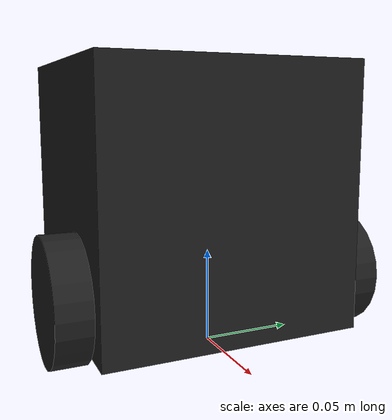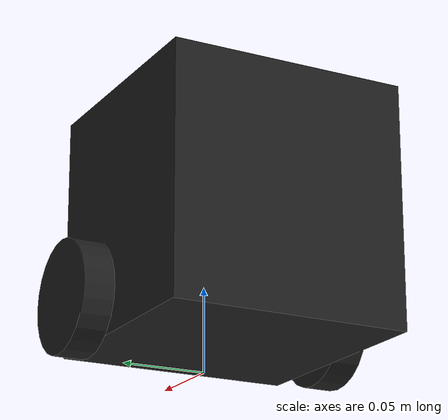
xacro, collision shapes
<?xml version="1.0"?>
<!-- Revolute-Revolute-Revolute Manipulator -->
<robot name="bot" xmlns:xacro="http://ros.org/wiki/xacro">
  <xacro:include filename="$(find turtlebot3_description)/urdf/common_properties.xacro"/>

  <!--xacro:include filename="$(find turtlebot3_description)/urdf/turtlebot3_burger.gazebo.xacro"/-->
  <xacro:include filename="$(find ros_control)/bot.gazebo"/>

  <link name="base_footprint"/>

  <joint name="base_joint" type="fixed">
    <parent link="base_footprint"/>
    <child link="base_link"/>
    <origin xyz="0.0 0.0 0.010" rpy="0 0 0"/>
  </joint>

  <link name="base_link">
    <visual>
      <origin xyz="-0.032 0 0.0" rpy="0 0 0"/>
      <geometry>
        <mesh filename="package://turtlebot3_description/meshes/bases/burger_base.stl" scale="0.001 0.001 0.001"/>
      </geometry>
      <material name="light_black"/>
    </visual>

    <collision>
      <origin xyz="-0.032 0 0.070" rpy="0 0 0"/>
      <geometry>
        <box size="0.140 0.140 0.143"/>
      </geometry>
    </collision>

    <inertial>
      <origin xyz="0 0 0" rpy="0 0 0"/>
      <mass value="8.2573504e-01"/>
      <inertia ixx="2.2124416e-03" ixy="-1.2294101e-05" ixz="3.4938785e-05"
               iyy="2.1193702e-03" iyz="-5.0120904e-06"
               izz="2.0064271e-03" />
    </inertial>
  </link>

  <joint name="wheel_left_joint" type="continuous">
    <parent link="base_link"/>
    <child link="wheel_left_link"/>
    <origin xyz="0.0 0.08 0.023" rpy="-1.57 0 0"/>

    <axis xyz="0 0 1"/>
  </joint>

  <link name="wheel_left_link">
    <visual>
      <origin xyz="0 0 0" rpy="1.57 0 0"/>
      <geometry>
        <mesh filename="package://turtlebot3_description/meshes/wheels/left_tire.stl" scale="0.001 0.001 0.001"/>
      </geometry>
      <material name="dark"/>
    </visual>

    <collision>
      <origin xyz="0 0 0" rpy="0 0 0"/>
      <geometry>
        <cylinder length="0.018" radius="0.033"/>
      </geometry>
    </collision>

    <inertial>
      <origin xyz="0 0 0" />
      <mass value="2.8498940e-02" />
      <inertia ixx="1.1175580e-05" ixy="-4.2369783e-11" ixz="-5.9381719e-09"
               iyy="1.1192413e-05" iyz="-1.4400107e-11"
               izz="2.0712558e-05" />
      </inertial>
  </link>

  <joint name="wheel_right_joint" type="continuous">
    <parent link="base_link"/>
    <child link="wheel_right_link"/>
    <origin xyz="0.0 -0.080 0.023" rpy="-1.57 0 0"/>

    <axis xyz="0 0 1"/>
  </joint>

  <link name="wheel_right_link">
    <visual>
      <origin xyz="0 0 0" rpy="1.57 0 0"/>
      <geometry>
        <mesh filename="package://turtlebot3_description/meshes/wheels/right_tire.stl" scale="0.001 0.001 0.001"/>
      </geometry>
      <material name="dark"/>
    </visual>

    <collision>
      <origin xyz="0 0 0" rpy="0 0 0"/>
      <geometry>
        <cylinder length="0.018" radius="0.033"/>
      </geometry>
    </collision>

    <inertial>
      <origin xyz="0 0 0" />
      <mass value="2.8498940e-02" />
      <inertia ixx="1.1175580e-05" ixy="-4.2369783e-11" ixz="-5.9381719e-09"
               iyy="1.1192413e-05" iyz="-1.4400107e-11"
               izz="2.0712558e-05" />
      </inertial>
  </link>

  <transmission name="tran1">
    <type>transmission_interface/SimpleTransmission</type>
    <joint name="wheel_left_joint">
      <hardwareInterface>hardware_interface/VelocityJointInterface</hardwareInterface>
    </joint>
    <actuator name="motor1">
      <hardwareInterface>hardware_interface/VelocityJointInterface</hardwareInterface>
      <mechanicalReduction>1</mechanicalReduction>
    </actuator>
  </transmission>

  <transmission name="tran2">
    <type>transmission_interface/SimpleTransmission</type>
    <joint name="wheel_right_joint">
      <hardwareInterface>hardware_interface/VelocityJointInterface</hardwareInterface>
    </joint>
    <actuator name="motor2">
      <hardwareInterface>hardware_interface/VelocityJointInterface</hardwareInterface>
      <mechanicalReduction>1</mechanicalReduction>
    </actuator>
  </transmission>

</robot>
